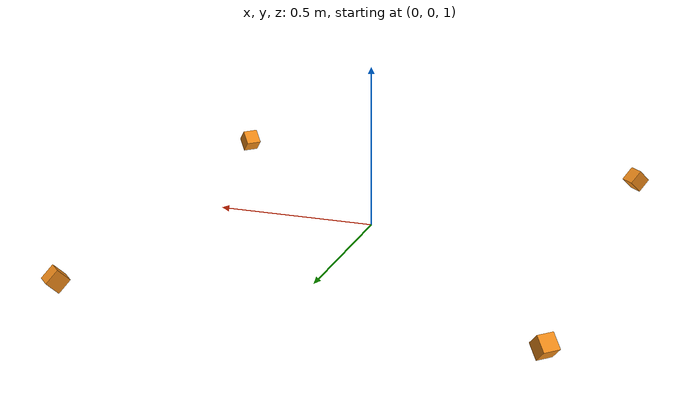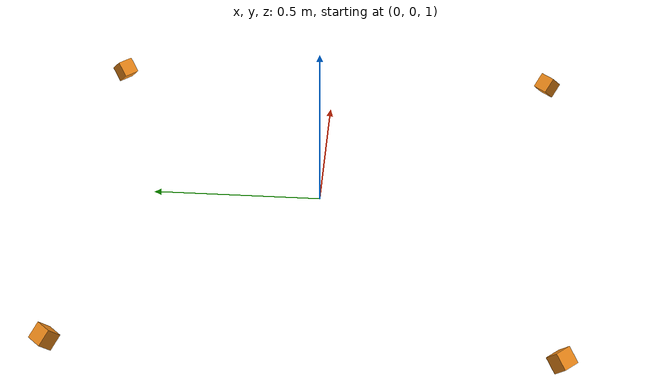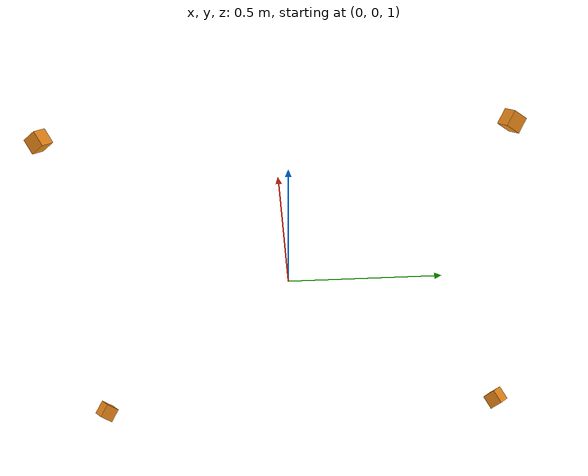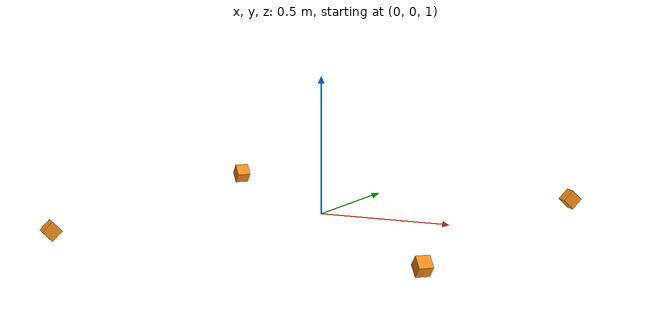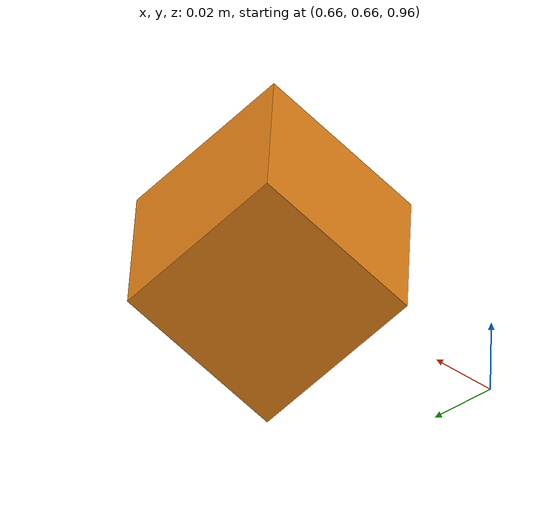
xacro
<?xml version="1.0"?>
<robot xmlns:xacro="http://www.ros.org/wiki/xacro" name="tracker">
    <xacro:arg name="use_sim_time" default="true"/>
    <xacro:include filename="robot_core.xacro"/>
    <xacro:include filename="camera1.xacro"/>
    <xacro:include filename="camera2.xacro"/>
    <xacro:include filename="camera3.xacro"/>
    <xacro:include filename="camera4.xacro"/>
</robot>

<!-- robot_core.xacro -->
<robot xmlns:xacro="http://www.ros.org/wiki/xacro">

    <xacro:include filename="material.xacro"/>

    <link name="world"></link>

    <joint name="base_joint" type="fixed">
        <origin xyz="0.0 0.0 0.0" rpy="0.0 0.0 0.0"/>
        <parent link="world"/>
        <child link="base_link"/>
    </joint>

    <link name="base_link"></link>

</robot>

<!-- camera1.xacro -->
<robot xmlns:xacro="http://www.ros.org/wiki/xacro">

    <joint name="camera1_joint" type="fixed">
        <origin xyz="0.7 0.7 1" rpy="0.0 0.785 -2.36"/>
        <parent link="base_link"/>
        <child link="camera1_link"/>
    </joint>

    <link name="camera1_link">
        <visual>
            <origin xyz="0.0 0.0 0.0"/>
            <geometry>
                <box size="0.05 0.05 0.05"/>
            </geometry>
            <material name="orange"/>
        </visual>
        <collision>
            <origin xyz="0.0 0.0 0.0"/>
            <geometry>
                <box size="0.05 0.05 0.05"/>
            </geometry>
        </collision>
        <inertial>
            <origin xyz="0 0 0" rpy="0 0 0"/>
            <mass value="0.1" />
            <inertia ixx="0.1" ixy="0.1" ixz="0.1" iyy="0.1" iyz="0.1" izz="0.1" />
        </inertial>
    </link>

    <joint name="camera1_optical_joint" type="fixed">
        <parent link="camera1_link"/>
        <child link="camera1_link_optical"/>
        <origin xyz="0 0 0" rpy="${-pi/2} 0 ${-pi/2}"/>
    </joint>

    <link name="camera1_link_optical"></link>

    <gazebo reference="camera1_link">
        <material>Gazebo/Orange</material>

        <sensor name="camera1" type="camera">
            <cameraName>camera1</cameraName>
            <imageTopicName>/camera1/image_raw</imageTopicName>
            <cameraInfoTopicName>/camera1/camera_info</cameraInfoTopicName>
            <pose> 0 0 0 0 0 0 </pose>
            <visualize>true</visualize>
            <update_rate>10</update_rate>
            <camera>
                <horizontal_fov>1.089</horizontal_fov>
                <image>
                    <format>R8G8B8</format>
                    <width>1080</width>
                    <height>720</height>
                </image>
                <clip>
                    <near>0.05</near>
                    <far>8.0</far>
                </clip>
            </camera>
            <plugin name="camera_controller" filename="libgazebo_ros_camera.so">
                <frame_name>camera1_link_optical</frame_name>
            </plugin>
        </sensor>
    </gazebo>
</robot>

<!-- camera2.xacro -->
<robot xmlns:xacro="http://www.ros.org/wiki/xacro">

    <joint name="camera2_joint" type="fixed">
        <origin xyz="0.7 -0.7 1" rpy="0.0 0.785 2.36"/>
        <parent link="base_link"/>
        <child link="camera2_link"/>
    </joint>

    <link name="camera2_link">
        <visual>
            <origin xyz="0.0 0.0 0.0"/>
            <geometry>
                <box size="0.05 0.05 0.05"/>
            </geometry>
            <material name="orange"/>
        </visual>
        <collision>
            <origin xyz="0.0 0.0 0.0"/>
            <geometry>
                <box size="0.05 0.05 0.05"/>
            </geometry>
        </collision>
        <inertial>
            <origin xyz="0 0 0" rpy="0 0 0"/>
            <mass value="0.1" />
            <inertia ixx="0.1" ixy="0.1" ixz="0.1" iyy="0.1" iyz="0.1" izz="0.1" />
        </inertial>
    </link>

    <joint name="camera2_optical_joint" type="fixed">
        <parent link="camera2_link"/>
        <child link="camera2_link_optical"/>
        <origin xyz="0 0 0" rpy="${-pi/2} 0 ${-pi/2}"/>
    </joint>

    <link name="camera2_link_optical"></link>

    <gazebo reference="camera2_link">
        <material>Gazebo/Orange</material>

        <sensor name="camera2" type="camera">
            <cameraName>camera2</cameraName>
            <imageTopicName>/camera2/image_raw</imageTopicName>
            <cameraInfoTopicName>/camera2/camera_info</cameraInfoTopicName>
            <pose> 0 0 0 0 0 0 </pose>
            <visualize>true</visualize>
            <update_rate>10</update_rate>
            <camera>
                <horizontal_fov>1.089</horizontal_fov>
                <image>
                    <format>R8G8B8</format>
                    <width>1080</width>
                    <height>720</height>
                </image>
                <clip>
                    <near>0.05</near>
                    <far>8.0</far>
                </clip>
            </camera>
            <plugin name="camera_controller" filename="libgazebo_ros_camera.so">
                <frame_name>camera2_link_optical</frame_name>
            </plugin>
        </sensor>
    </gazebo>
</robot>

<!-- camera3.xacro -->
<robot xmlns:xacro="http://www.ros.org/wiki/xacro">

    <joint name="camera3_joint" type="fixed">
        <origin xyz="-0.7 -0.7 1" rpy="0.0 0.785 0.785"/>
        <parent link="base_link"/>
        <child link="camera3_link"/>
    </joint>

    <link name="camera3_link">
        <visual>
            <origin xyz="0.0 0.0 0.0"/>
            <geometry>
                <box size="0.05 0.05 0.05"/>
            </geometry>
            <material name="orange"/>
        </visual>
        <collision>
            <origin xyz="0.0 0.0 0.0"/>
            <geometry>
                <box size="0.05 0.05 0.05"/>
            </geometry>
        </collision>
        <inertial>
            <origin xyz="0 0 0" rpy="0 0 0"/>
            <mass value="0.1" />
            <inertia ixx="0.1" ixy="0.1" ixz="0.1" iyy="0.1" iyz="0.1" izz="0.1" />
        </inertial>
    </link>

    <joint name="camera3_optical_joint" type="fixed">
        <parent link="camera3_link"/>
        <child link="camera3_link_optical"/>
        <origin xyz="0 0 0" rpy="${-pi/2} 0 ${-pi/2}"/>
    </joint>

    <link name="camera3_link_optical"></link>

    <gazebo reference="camera3_link">
        <material>Gazebo/Orange</material>

        <sensor name="camera3" type="camera">
            <cameraName>camera3</cameraName>
            <imageTopicName>/camera3/image_raw</imageTopicName>
            <cameraInfoTopicName>/camera3/camera_info</cameraInfoTopicName>
            <pose> 0 0 0 0 0 0 </pose>
            <visualize>true</visualize>
            <update_rate>10</update_rate>
            <camera>
                <horizontal_fov>1.089</horizontal_fov>
                <image>
                    <format>R8G8B8</format>
                    <width>1080</width>
                    <height>720</height>
                </image>
                <clip>
                    <near>0.05</near>
                    <far>8.0</far>
                </clip>
            </camera>
            <plugin name="camera_controller" filename="libgazebo_ros_camera.so">
                <frame_name>camera3_link_optical</frame_name>
            </plugin>
        </sensor>
    </gazebo>
</robot>

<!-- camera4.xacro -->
<robot xmlns:xacro="http://www.ros.org/wiki/xacro">

    <joint name="camera4_joint" type="fixed">
        <origin xyz="-0.7 0.7 1" rpy="0.0 0.785 -0.785"/>
        <parent link="base_link"/>
        <child link="camera4_link"/>
    </joint>

    <link name="camera4_link">
        <visual>
            <origin xyz="0.0 0.0 0.0"/>
            <geometry>
                <box size="0.05 0.05 0.05"/>
            </geometry>
            <material name="orange"/>
        </visual>
        <collision>
            <origin xyz="0.0 0.0 0.0"/>
            <geometry>
                <box size="0.05 0.05 0.05"/>
            </geometry>
        </collision>
        <inertial>
            <origin xyz="0 0 0" rpy="0 0 0"/>
            <mass value="0.1" />
            <inertia ixx="0.1" ixy="0.1" ixz="0.1" iyy="0.1" iyz="0.1" izz="0.1" />
        </inertial>
    </link>

    <joint name="camera4_optical_joint" type="fixed">
        <parent link="camera4_link"/>
        <child link="camera4_link_optical"/>
        <origin xyz="0 0 0" rpy="${-pi/2} 0 ${-pi/2}"/>
    </joint>

    <link name="camera4_link_optical"></link>

    <gazebo reference="camera4_link">
        <material>Gazebo/Orange</material>

        <sensor name="camera4" type="camera">
            <cameraName>camera4</cameraName>
            <imageTopicName>/camera4/image_raw</imageTopicName>
            <cameraInfoTopicName>/camera4/camera_info</cameraInfoTopicName>
            <pose> 0 0 0 0 0 0 </pose>
            <visualize>true</visualize>
            <update_rate>10</update_rate>
            <camera>
                <horizontal_fov>1.089</horizontal_fov>
                <image>
                    <format>R8G8B8</format>
                    <width>1080</width>
                    <height>720</height>
                </image>
                <clip>
                    <near>0.05</near>
                    <far>8.0</far>
                </clip>
            </camera>
            <plugin name="camera_controller" filename="libgazebo_ros_camera.so">
                <frame_name>camera4_link_optical</frame_name>
            </plugin>
        </sensor>
    </gazebo>
</robot>
